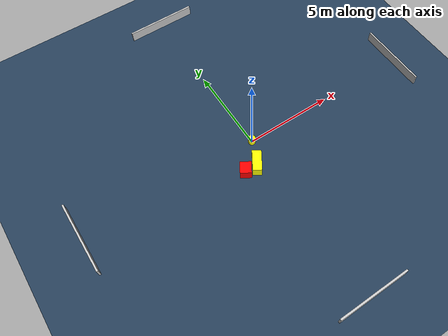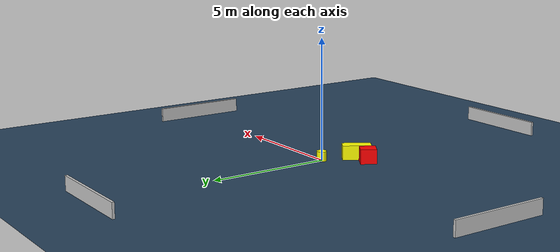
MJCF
<?xml version="1.0" ?>
<mujoco model="generated_environment">
  <option timestep="0.01" integrator="RK4" cone="elliptic"/>
  <default>
    <geom density="1"/>
  </default>
  <asset>
    <texture builtin="gradient" height="3072" name="skybox" rgb1="0.3 0.5 0.7" rgb2="0 0 0" type="skybox" width="512"/>
    <texture builtin="checker" height="300" name="groundplane" rgb1="0.2 0.3 0.4" rgb2="0.1 0.2 0.3" type="2d" width="300"/>
    <material name="groundplane" reflectance="0.2" texrepeat="5 5" texture="groundplane"/>
  </asset>
  <worldbody>
    <light dir="0 0 -1" directional="true" pos="0 0 1.5"/>
    <geom condim="3" friction="0.5 0.005 0.001" material="groundplane" name="floor" pos="0 0 0" size="0 0 0.05" type="plane"/>
    <body name="walls">
      <geom name="wall_1" condim="4" pos="-10.0 0.0 0.3" rgba="0.800000011920929 0.800000011920929 0.800000011920929 1.0" size="0.05 2.0 0.3" type="box"/>
      <geom name="wall_2" condim="4" pos="10.0 0.0 0.3" rgba="0.800000011920929 0.800000011920929 0.800000011920929 1.0" size="0.05 2.0 0.3" type="box"/>
      <geom name="wall_3" condim="4" pos="0.0 -10.0 0.3" rgba="0.800000011920929 0.800000011920929 0.800000011920929 1.0" size="2.0 0.05 0.3" type="box"/>
      <geom name="wall_4" condim="4" pos="0.0 10.0 0.3" rgba="0.800000011920929 0.800000011920929 0.800000011920929 1.0" size="2.0 0.05 0.3" type="box"/>
    </body>
    <body name="robot">
      <joint name="joint_x" type="slide" pos="0 0 0" axis="1 0 0"/>
      <joint name="joint_y" type="slide" pos="0 0 0" axis="0 1 0"/>
      <geom name="robot" type="cylinder" pos="0.0 0.0 0.2" size="0.2 0.2 0.0" mass="5.0" friction="1.0 0.005 0.0001" condim="4" rgba="1.0 1.0 0.0 1.0"/>
    </body>
    <body name="obstacle_1_movable">
      <geom name="obstacle_1_movable" condim="4" pos="-0.5723703871996144 -1.325819325328875 0.3" euler="0 0 148.2013534607205" friction="0.0 0.005 0.001" rgba="1.0 1.0 0.0 1.0" size="0.2507157248433805 0.5865431940036601 0.3" type="box" mass="0.1"/>
      <joint type="free"/>
    </body>
    <body name="obstacle_2_static">
      <geom name="obstacle_2_static" condim="4" pos="-1.2943575622665042 -1.3482814188891432 0.3" euler="0 0 328.11880301912487" friction="0.0 0.005 0.001" rgba="1.0 0.0 0.0 1.0" size="0.309351919590721 0.33160665087103103 0.3" type="box"/>
    </body>
  </worldbody>
  <actuator>
    <motor name="actuator_x" joint="joint_x" gear="1" ctrlrange="-1 1"/>
    <motor name="actuator_y" joint="joint_y" gear="1" ctrlrange="-1 1"/>
  </actuator>
</mujoco>
